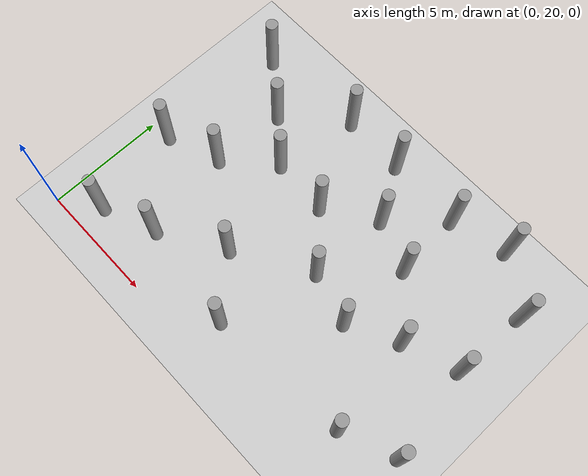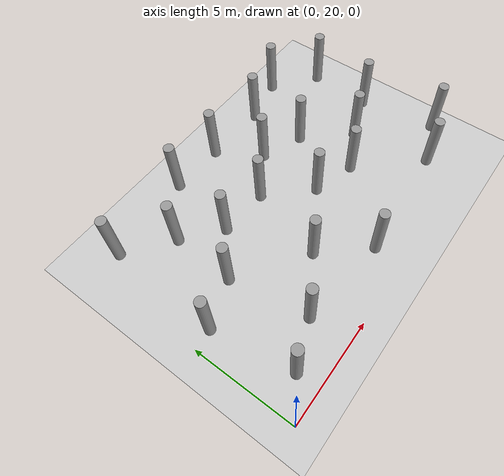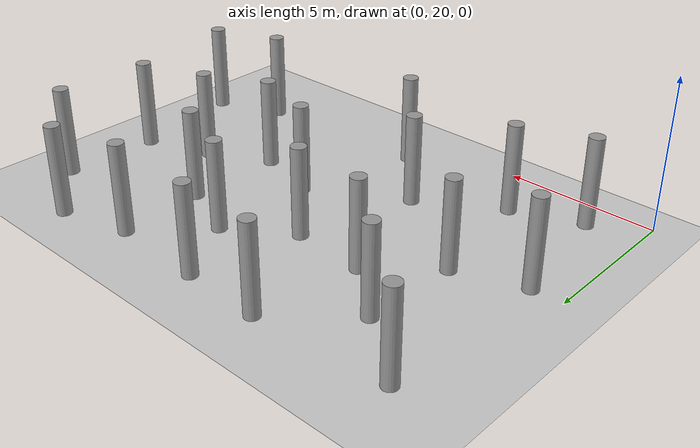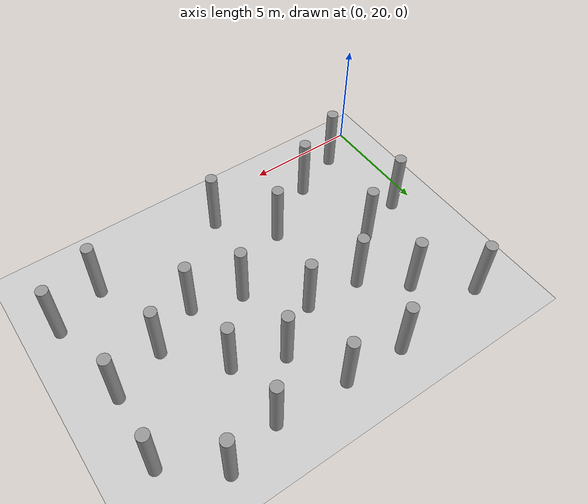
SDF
<sdf version="1.6">
 <world name="default">
  <model name="ground_plane">
   <static>1</static>
   <link name="link">
    <collision name="collision">
     <geometry><plane><normal>0 0 1</normal><size>100 100</size></plane></geometry>
     <surface><friction><ode><mu>100</mu><mu2>50</mu2></ode></friction></surface>
    </collision>
    <visual name="visual">
     <cast_shadows>0</cast_shadows>
     <geometry><plane><normal>0 0 1</normal><size>100 100</size></plane></geometry>
     <material>
      <script><uri>file://media/materials/scripts/gazebo.material</uri><name>Gazebo/Grey</name></script>
     </material>
    </visual>
   </link>
  </model>
  <model name="LjjForest_1">
   <link name="link_0">
    <inertial>
     <mass>1</mass>
     <inertia><ixx>0.145833</ixx><ixy>0</ixy><ixz>0</ixz><iyy>0.145833</iyy><iyz>0</iyz><izz>0.125</izz></inertia>
    </inertial>
    <pose>-5.02717 0.116957 0 0 -0 0</pose>
    <visual name="visual">
     <geometry><cylinder><radius>0.25</radius><length>3</length></cylinder></geometry>
     <material>
      <lighting>1</lighting>
      <script><uri>file://media/materials/scripts/gazebo.material</uri><name>Gazebo/Grey</name></script>
      <shader type="vertex"><normal_map>__default__</normal_map></shader>
      <ambient>0.3 0.3 0.3 1</ambient>
      <diffuse>0.7 0.7 0.7 1</diffuse>
      <specular>0.01 0.01 0.01 1</specular>
      <emissive>0 0 0 1</emissive>
     </material>
    </visual>
    <collision name="collision">
     <geometry><cylinder><radius>0.25</radius><length>3</length></cylinder></geometry>
     <surface>
      <friction>
       <ode><mu>1</mu><mu2>1</mu2><fdir1>0 0 0</fdir1><slip1>0</slip1><slip2>0</slip2></ode>
       <torsional>
        <coefficient>1</coefficient>
        <patch_radius>0</patch_radius>
        <surface_radius>0</surface_radius>
        <use_patch_radius>1</use_patch_radius>
        <ode><slip>0</slip></ode>
       </torsional>
      </friction>
      <bounce><restitution_coefficient>0</restitution_coefficient><threshold>1e+06</threshold></bounce>
      <contact>
       <collide_without_contact>0</collide_without_contact>
       <collide_without_contact_bitmask>1</collide_without_contact_bitmask>
       <collide_bitmask>1</collide_bitmask>
       <ode>
        <soft_cfm>0</soft_cfm>
        <soft_erp>0.2</soft_erp>
        <kp>1e+13</kp>
        <kd>1</kd>
        <max_vel>0.01</max_vel>
        <min_depth>0</min_depth>
       </ode>
       <bullet>
        <split_impulse>1</split_impulse>
        <split_impulse_penetration_threshold>-0.01</split_impulse_penetration_threshold>
        <soft_cfm>0</soft_cfm>
        <soft_erp>0.2</soft_erp>
        <kp>1e+13</kp>
        <kd>1</kd>
       </bullet>
      </contact>
     </surface>
    </collision>
   </link>
   <link name="link_0_clone">
    <inertial>
     <mass>1</mass>
     <inertia><ixx>0.145833</ixx><ixy>0</ixy><ixz>0</ixz><iyy>0.145833</iyy><iyz>0</iyz><izz>0.125</izz></inertia>
    </inertial>
    <pose>-2.83119 0.981911 0 0 -0 0</pose>
    <visual name="visual">
     <geometry><cylinder><radius>0.25</radius><length>3</length></cylinder></geometry>
     <material>
      <lighting>1</lighting>
      <script><uri>file://media/materials/scripts/gazebo.material</uri><name>Gazebo/Grey</name></script>
      <shader type="vertex"><normal_map>__default__</normal_map></shader>
      <ambient>0.3 0.3 0.3 1</ambient>
      <diffuse>0.7 0.7 0.7 1</diffuse>
      <specular>0.01 0.01 0.01 1</specular>
      <emissive>0 0 0 1</emissive>
     </material>
    </visual>
    <collision name="collision">
     <geometry><cylinder><radius>0.25</radius><length>3</length></cylinder></geometry>
     <surface>
      <friction>
       <ode><mu>1</mu><mu2>1</mu2><fdir1>0 0 0</fdir1><slip1>0</slip1><slip2>0</slip2></ode>
       <torsional>
        <coefficient>1</coefficient>
        <patch_radius>0</patch_radius>
        <surface_radius>0</surface_radius>
        <use_patch_radius>1</use_patch_radius>
        <ode><slip>0</slip></ode>
       </torsional>
      </friction>
      <bounce><restitution_coefficient>0</restitution_coefficient><threshold>1e+06</threshold></bounce>
      <contact>
       <collide_without_contact>0</collide_without_contact>
       <collide_without_contact_bitmask>1</collide_without_contact_bitmask>
       <collide_bitmask>1</collide_bitmask>
       <ode>
        <soft_cfm>0</soft_cfm>
        <soft_erp>0.2</soft_erp>
        <kp>1e+13</kp>
        <kd>1</kd>
        <max_vel>0.01</max_vel>
        <min_depth>0</min_depth>
       </ode>
       <bullet>
        <split_impulse>1</split_impulse>
        <split_impulse_penetration_threshold>-0.01</split_impulse_penetration_threshold>
        <soft_cfm>0</soft_cfm>
        <soft_erp>0.2</soft_erp>
        <kp>1e+13</kp>
        <kd>1</kd>
       </bullet>
      </contact>
     </surface>
    </collision>
   </link>
   <link name="link_0_clone_0">
    <inertial>
     <mass>1</mass>
     <inertia><ixx>0.145833</ixx><ixy>0</ixy><ixz>0</ixz><iyy>0.145833</iyy><iyz>0</iyz><izz>0.125</izz></inertia>
    </inertial>
    <pose>-0.25253 2.5682 0 0 -0 0</pose>
    <visual name="visual">
     <geometry><cylinder><radius>0.25</radius><length>3</length></cylinder></geometry>
     <material>
      <lighting>1</lighting>
      <script><uri>file://media/materials/scripts/gazebo.material</uri><name>Gazebo/Grey</name></script>
      <shader type="vertex"><normal_map>__default__</normal_map></shader>
      <ambient>0.3 0.3 0.3 1</ambient>
      <diffuse>0.7 0.7 0.7 1</diffuse>
      <specular>0.01 0.01 0.01 1</specular>
      <emissive>0 0 0 1</emissive>
     </material>
    </visual>
    <collision name="collision">
     <geometry><cylinder><radius>0.25</radius><length>3</length></cylinder></geometry>
     <surface>
      <friction>
       <ode><mu>1</mu><mu2>1</mu2><fdir1>0 0 0</fdir1><slip1>0</slip1><slip2>0</slip2></ode>
       <torsional>
        <coefficient>1</coefficient>
        <patch_radius>0</patch_radius>
        <surface_radius>0</surface_radius>
        <use_patch_radius>1</use_patch_radius>
        <ode><slip>0</slip></ode>
       </torsional>
      </friction>
      <bounce><restitution_coefficient>0</restitution_coefficient><threshold>1e+06</threshold></bounce>
      <contact>
       <collide_without_contact>0</collide_without_contact>
       <collide_without_contact_bitmask>1</collide_without_contact_bitmask>
       <collide_bitmask>1</collide_bitmask>
       <ode>
        <soft_cfm>0</soft_cfm>
        <soft_erp>0.2</soft_erp>
        <kp>1e+13</kp>
        <kd>1</kd>
        <max_vel>0.01</max_vel>
        <min_depth>0</min_depth>
       </ode>
       <bullet>
        <split_impulse>1</split_impulse>
        <split_impulse_penetration_threshold>-0.01</split_impulse_penetration_threshold>
        <soft_cfm>0</soft_cfm>
        <soft_erp>0.2</soft_erp>
        <kp>1e+13</kp>
        <kd>1</kd>
       </bullet>
      </contact>
     </surface>
    </collision>
   </link>
   <link name="link_0_clone_2">
    <inertial>
     <mass>1</mass>
     <inertia><ixx>0.145833</ixx><ixy>0</ixy><ixz>0</ixz><iyy>0.145833</iyy><iyz>0</iyz><izz>0.125</izz></inertia>
    </inertial>
    <pose>1.64727 0.418921 0 0 -0 0</pose>
    <visual name="visual">
     <geometry><cylinder><radius>0.25</radius><length>3</length></cylinder></geometry>
     <material>
      <lighting>1</lighting>
      <script><uri>file://media/materials/scripts/gazebo.material</uri><name>Gazebo/Grey</name></script>
      <shader type="vertex"><normal_map>__default__</normal_map></shader>
      <ambient>0.3 0.3 0.3 1</ambient>
      <diffuse>0.7 0.7 0.7 1</diffuse>
      <specular>0.01 0.01 0.01 1</specular>
      <emissive>0 0 0 1</emissive>
     </material>
    </visual>
    <collision name="collision">
     <geometry><cylinder><radius>0.25</radius><length>3</length></cylinder></geometry>
     <surface>
      <friction>
       <ode><mu>1</mu><mu2>1</mu2><fdir1>0 0 0</fdir1><slip1>0</slip1><slip2>0</slip2></ode>
       <torsional>
        <coefficient>1</coefficient>
        <patch_radius>0</patch_radius>
        <surface_radius>0</surface_radius>
        <use_patch_radius>1</use_patch_radius>
        <ode><slip>0</slip></ode>
       </torsional>
      </friction>
      <bounce><restitution_coefficient>0</restitution_coefficient><threshold>1e+06</threshold></bounce>
      <contact>
       <collide_without_contact>0</collide_without_contact>
       <collide_without_contact_bitmask>1</collide_without_contact_bitmask>
       <collide_bitmask>1</collide_bitmask>
       <ode>
        <soft_cfm>0</soft_cfm>
        <soft_erp>0.2</soft_erp>
        <kp>1e+13</kp>
        <kd>1</kd>
        <max_vel>0.01</max_vel>
        <min_depth>0</min_depth>
       </ode>
       <bullet>
        <split_impulse>1</split_impulse>
        <split_impulse_penetration_threshold>-0.01</split_impulse_penetration_threshold>
        <soft_cfm>0</soft_cfm>
        <soft_erp>0.2</soft_erp>
        <kp>1e+13</kp>
        <kd>1</kd>
       </bullet>
      </contact>
     </surface>
    </collision>
   </link>
   <link name="link_0_clone_23">
    <inertial>
     <mass>1</mass>
     <inertia><ixx>0.145833</ixx><ixy>0</ixy><ixz>0</ixz><iyy>0.145833</iyy><iyz>0</iyz><izz>0.125</izz></inertia>
    </inertial>
    <pose>-5.66615 4.05911 0 0 -0 0</pose>
    <visual name="visual">
     <geometry><cylinder><radius>0.25</radius><length>3</length></cylinder></geometry>
     <material>
      <lighting>1</lighting>
      <script><uri>file://media/materials/scripts/gazebo.material</uri><name>Gazebo/Grey</name></script>
      <shader type="vertex"><normal_map>__default__</normal_map></shader>
      <ambient>0.3 0.3 0.3 1</ambient>
      <diffuse>0.7 0.7 0.7 1</diffuse>
      <specular>0.01 0.01 0.01 1</specular>
      <emissive>0 0 0 1</emissive>
     </material>
    </visual>
    <collision name="collision">
     <geometry><cylinder><radius>0.25</radius><length>3</length></cylinder></geometry>
     <surface>
      <friction>
       <ode><mu>1</mu><mu2>1</mu2><fdir1>0 0 0</fdir1><slip1>0</slip1><slip2>0</slip2></ode>
       <torsional>
        <coefficient>1</coefficient>
        <patch_radius>0</patch_radius>
        <surface_radius>0</surface_radius>
        <use_patch_radius>1</use_patch_radius>
        <ode><slip>0</slip></ode>
       </torsional>
      </friction>
      <bounce><restitution_coefficient>0</restitution_coefficient><threshold>1e+06</threshold></bounce>
      <contact>
       <collide_without_contact>0</collide_without_contact>
       <collide_without_contact_bitmask>1</collide_without_contact_bitmask>
       <collide_bitmask>1</collide_bitmask>
       <ode>
        <soft_cfm>0</soft_cfm>
        <soft_erp>0.2</soft_erp>
        <kp>1e+13</kp>
        <kd>1</kd>
        <max_vel>0.01</max_vel>
        <min_depth>0</min_depth>
       </ode>
       <bullet>
        <split_impulse>1</split_impulse>
        <split_impulse_penetration_threshold>-0.01</split_impulse_penetration_threshold>
        <soft_cfm>0</soft_cfm>
        <soft_erp>0.2</soft_erp>
        <kp>1e+13</kp>
        <kd>1</kd>
       </bullet>
      </contact>
     </surface>
    </collision>
   </link>
   <link name="link_0_clone_24">
    <inertial>
     <mass>1</mass>
     <inertia><ixx>0.145833</ixx><ixy>0</ixy><ixz>0</ixz><iyy>0.145833</iyy><iyz>0</iyz><izz>0.125</izz></inertia>
    </inertial>
    <pose>2.92874 7.75131 0 0 -0 0</pose>
    <visual name="visual">
     <geometry><cylinder><radius>0.25</radius><length>3</length></cylinder></geometry>
     <material>
      <lighting>1</lighting>
      <script><uri>file://media/materials/scripts/gazebo.material</uri><name>Gazebo/Grey</name></script>
      <shader type="vertex"><normal_map>__default__</normal_map></shader>
      <ambient>0.3 0.3 0.3 1</ambient>
      <diffuse>0.7 0.7 0.7 1</diffuse>
      <specular>0.01 0.01 0.01 1</specular>
      <emissive>0 0 0 1</emissive>
     </material>
    </visual>
    <collision name="collision">
     <geometry><cylinder><radius>0.25</radius><length>3</length></cylinder></geometry>
     <surface>
      <friction>
       <ode><mu>1</mu><mu2>1</mu2><fdir1>0 0 0</fdir1><slip1>0</slip1><slip2>0</slip2></ode>
       <torsional>
        <coefficient>1</coefficient>
        <patch_radius>0</patch_radius>
        <surface_radius>0</surface_radius>
        <use_patch_radius>1</use_patch_radius>
        <ode><slip>0</slip></ode>
       </torsional>
      </friction>
      <bounce><restitution_coefficient>0</restitution_coefficient><threshold>1e+06</threshold></bounce>
      <contact>
       <collide_without_contact>0</collide_without_contact>
       <collide_without_contact_bitmask>1</collide_without_contact_bitmask>
       <collide_bitmask>1</collide_bitmask>
       <ode>
        <soft_cfm>0</soft_cfm>
        <soft_erp>0.2</soft_erp>
        <kp>1e+13</kp>
        <kd>1</kd>
        <max_vel>0.01</max_vel>
        <min_depth>0</min_depth>
       </ode>
       <bullet>
        <split_impulse>1</split_impulse>
        <split_impulse_penetration_threshold>-0.01</split_impulse_penetration_threshold>
        <soft_cfm>0</soft_cfm>
        <soft_erp>0.2</soft_erp>
        <kp>1e+13</kp>
        <kd>1</kd>
       </bullet>
      </contact>
     </surface>
    </collision>
   </link>
   <link name="link_0_clone_25">
    <inertial>
     <mass>1</mass>
     <inertia><ixx>0.145833</ixx><ixy>0</ixy><ixz>0</ixz><iyy>0.145833</iyy><iyz>0</iyz><izz>0.125</izz></inertia>
    </inertial>
    <pose>4.82479 9.76951 0 0 -0 0</pose>
    <visual name="visual">
     <geometry><cylinder><radius>0.25</radius><length>3</length></cylinder></geometry>
     <material>
      <lighting>1</lighting>
      <script><uri>file://media/materials/scripts/gazebo.material</uri><name>Gazebo/Grey</name></script>
      <shader type="vertex"><normal_map>__default__</normal_map></shader>
      <ambient>0.3 0.3 0.3 1</ambient>
      <diffuse>0.7 0.7 0.7 1</diffuse>
      <specular>0.01 0.01 0.01 1</specular>
      <emissive>0 0 0 1</emissive>
     </material>
    </visual>
    <collision name="collision">
     <geometry><cylinder><radius>0.25</radius><length>3</length></cylinder></geometry>
     <surface>
      <friction>
       <ode><mu>1</mu><mu2>1</mu2><fdir1>0 0 0</fdir1><slip1>0</slip1><slip2>0</slip2></ode>
       <torsional>
        <coefficient>1</coefficient>
        <patch_radius>0</patch_radius>
        <surface_radius>0</surface_radius>
        <use_patch_radius>1</use_patch_radius>
        <ode><slip>0</slip></ode>
       </torsional>
      </friction>
      <bounce><restitution_coefficient>0</restitution_coefficient><threshold>1e+06</threshold></bounce>
      <contact>
       <collide_without_contact>0</collide_without_contact>
       <collide_without_contact_bitmask>1</collide_without_contact_bitmask>
       <collide_bitmask>1</collide_bitmask>
       <ode>
        <soft_cfm>0</soft_cfm>
        <soft_erp>0.2</soft_erp>
        <kp>1e+13</kp>
        <kd>1</kd>
        <max_vel>0.01</max_vel>
        <min_depth>0</min_depth>
       </ode>
       <bullet>
        <split_impulse>1</split_impulse>
        <split_impulse_penetration_threshold>-0.01</split_impulse_penetration_threshold>
        <soft_cfm>0</soft_cfm>
        <soft_erp>0.2</soft_erp>
        <kp>1e+13</kp>
        <kd>1</kd>
       </bullet>
      </contact>
     </surface>
    </collision>
   </link>
   <link name="link_0_clone_26">
    <inertial>
     <mass>1</mass>
     <inertia><ixx>0.145833</ixx><ixy>0</ixy><ixz>0</ixz><iyy>0.145833</iyy><iyz>0</iyz><izz>0.125</izz></inertia>
    </inertial>
    <pose>1.66794 9.91533 0 0 -0 0</pose>
    <visual name="visual">
     <geometry><cylinder><radius>0.25</radius><length>3</length></cylinder></geometry>
     <material>
      <lighting>1</lighting>
      <script><uri>file://media/materials/scripts/gazebo.material</uri><name>Gazebo/Grey</name></script>
      <shader type="vertex"><normal_map>__default__</normal_map></shader>
      <ambient>0.3 0.3 0.3 1</ambient>
      <diffuse>0.7 0.7 0.7 1</diffuse>
      <specular>0.01 0.01 0.01 1</specular>
      <emissive>0 0 0 1</emissive>
     </material>
    </visual>
    <collision name="collision">
     <geometry><cylinder><radius>0.25</radius><length>3</length></cylinder></geometry>
     <surface>
      <friction>
       <ode><mu>1</mu><mu2>1</mu2><fdir1>0 0 0</fdir1><slip1>0</slip1><slip2>0</slip2></ode>
       <torsional>
        <coefficient>1</coefficient>
        <patch_radius>0</patch_radius>
        <surface_radius>0</surface_radius>
        <use_patch_radius>1</use_patch_radius>
        <ode><slip>0</slip></ode>
       </torsional>
      </friction>
      <bounce><restitution_coefficient>0</restitution_coefficient><threshold>1e+06</threshold></bounce>
      <contact>
       <collide_without_contact>0</collide_without_contact>
       <collide_without_contact_bitmask>1</collide_without_contact_bitmask>
       <collide_bitmask>1</collide_bitmask>
       <ode>
        <soft_cfm>0</soft_cfm>
        <soft_erp>0.2</soft_erp>
        <kp>1e+13</kp>
        <kd>1</kd>
        <max_vel>0.01</max_vel>
        <min_depth>0</min_depth>
       </ode>
       <bullet>
        <split_impulse>1</split_impulse>
        <split_impulse_penetration_threshold>-0.01</split_impulse_penetration_threshold>
        <soft_cfm>0</soft_cfm>
        <soft_erp>0.2</soft_erp>
        <kp>1e+13</kp>
        <kd>1</kd>
       </bullet>
      </contact>
     </surface>
    </collision>
   </link>
   <link name="link_0_clone_27">
    <inertial>
     <mass>1</mass>
     <inertia><ixx>0.145833</ixx><ixy>0</ixy><ixz>0</ixz><iyy>0.145833</iyy><iyz>0</iyz><izz>0.125</izz></inertia>
    </inertial>
    <pose>-0.975859 10.0087 0 0 -0 0</pose>
    <visual name="visual">
     <geometry><cylinder><radius>0.25</radius><length>3</length></cylinder></geometry>
     <material>
      <lighting>1</lighting>
      <script><uri>file://media/materials/scripts/gazebo.material</uri><name>Gazebo/Grey</name></script>
      <shader type="vertex"><normal_map>__default__</normal_map></shader>
      <ambient>0.3 0.3 0.3 1</ambient>
      <diffuse>0.7 0.7 0.7 1</diffuse>
      <specular>0.01 0.01 0.01 1</specular>
      <emissive>0 0 0 1</emissive>
     </material>
    </visual>
    <collision name="collision">
     <geometry><cylinder><radius>0.25</radius><length>3</length></cylinder></geometry>
     <surface>
      <friction>
       <ode><mu>1</mu><mu2>1</mu2><fdir1>0 0 0</fdir1><slip1>0</slip1><slip2>0</slip2></ode>
       <torsional>
        <coefficient>1</coefficient>
        <patch_radius>0</patch_radius>
        <surface_radius>0</surface_radius>
        <use_patch_radius>1</use_patch_radius>
        <ode><slip>0</slip></ode>
       </torsional>
      </friction>
      <bounce><restitution_coefficient>0</restitution_coefficient><threshold>1e+06</threshold></bounce>
      <contact>
       <collide_without_contact>0</collide_without_contact>
       <collide_without_contact_bitmask>1</collide_without_contact_bitmask>
       <collide_bitmask>1</collide_bitmask>
       <ode>
        <soft_cfm>0</soft_cfm>
        <soft_erp>0.2</soft_erp>
        <kp>1e+13</kp>
        <kd>1</kd>
        <max_vel>0.01</max_vel>
        <min_depth>0</min_depth>
       </ode>
       <bullet>
        <split_impulse>1</split_impulse>
        <split_impulse_penetration_threshold>-0.01</split_impulse_penetration_threshold>
        <soft_cfm>0</soft_cfm>
        <soft_erp>0.2</soft_erp>
        <kp>1e+13</kp>
        <kd>1</kd>
       </bullet>
      </contact>
     </surface>
    </collision>
   </link>
   <link name="link_0_clone_28">
    <inertial>
     <mass>1</mass>
     <inertia><ixx>0.145833</ixx><ixy>0</ixy><ixz>0</ixz><iyy>0.145833</iyy><iyz>0</iyz><izz>0.125</izz></inertia>
    </inertial>
    <pose>-3.28832 7.97521 0 0 -0 0</pose>
    <visual name="visual">
     <geometry><cylinder><radius>0.25</radius><length>3</length></cylinder></geometry>
     <material>
      <lighting>1</lighting>
      <script><uri>file://media/materials/scripts/gazebo.material</uri><name>Gazebo/Grey</name></script>
      <shader type="vertex"><normal_map>__default__</normal_map></shader>
      <ambient>0.3 0.3 0.3 1</ambient>
      <diffuse>0.7 0.7 0.7 1</diffuse>
      <specular>0.01 0.01 0.01 1</specular>
      <emissive>0 0 0 1</emissive>
     </material>
    </visual>
    <collision name="collision">
     <geometry><cylinder><radius>0.25</radius><length>3</length></cylinder></geometry>
     <surface>
      <friction>
       <ode><mu>1</mu><mu2>1</mu2><fdir1>0 0 0</fdir1><slip1>0</slip1><slip2>0</slip2></ode>
       <torsional>
        <coefficient>1</coefficient>
        <patch_radius>0</patch_radius>
        <surface_radius>0</surface_radius>
        <use_patch_radius>1</use_patch_radius>
        <ode><slip>0</slip></ode>
       </torsional>
      </friction>
      <bounce><restitution_coefficient>0</restitution_coefficient><threshold>1e+06</threshold></bounce>
      <contact>
       <collide_without_contact>0</collide_without_contact>
       <collide_without_contact_bitmask>1</collide_without_contact_bitmask>
       <collide_bitmask>1</collide_bitmask>
       <ode>
        <soft_cfm>0</soft_cfm>
        <soft_erp>0.2</soft_erp>
        <kp>1e+13</kp>
        <kd>1</kd>
        <max_vel>0.01</max_vel>
        <min_depth>0</min_depth>
       </ode>
       <bullet>
        <split_impulse>1</split_impulse>
        <split_impulse_penetration_threshold>-0.01</split_impulse_penetration_threshold>
        <soft_cfm>0</soft_cfm>
        <soft_erp>0.2</soft_erp>
        <kp>1e+13</kp>
        <kd>1</kd>
       </bullet>
      </contact>
     </surface>
    </collision>
   </link>
   <link name="link_0_clone_29">
    <inertial>
     <mass>1</mass>
     <inertia><ixx>0.145833</ixx><ixy>0</ixy><ixz>0</ixz><iyy>0.145833</iyy><iyz>0</iyz><izz>0.125</izz></inertia>
    </inertial>
    <pose>-5.38645 9.63545 0 0 -0 0</pose>
    <visual name="visual">
     <geometry><cylinder><radius>0.25</radius><length>3</length></cylinder></geometry>
     <material>
      <lighting>1</lighting>
      <script><uri>file://media/materials/scripts/gazebo.material</uri><name>Gazebo/Grey</name></script>
      <shader type="vertex"><normal_map>__default__</normal_map></shader>
      <ambient>0.3 0.3 0.3 1</ambient>
      <diffuse>0.7 0.7 0.7 1</diffuse>
      <specular>0.01 0.01 0.01 1</specular>
      <emissive>0 0 0 1</emissive>
     </material>
    </visual>
    <collision name="collision">
     <geometry><cylinder><radius>0.25</radius><length>3</length></cylinder></geometry>
     <surface>
      <friction>
       <ode><mu>1</mu><mu2>1</mu2><fdir1>0 0 0</fdir1><slip1>0</slip1><slip2>0</slip2></ode>
       <torsional>
        <coefficient>1</coefficient>
        <patch_radius>0</patch_radius>
        <surface_radius>0</surface_radius>
        <use_patch_radius>1</use_patch_radius>
        <ode><slip>0</slip></ode>
       </torsional>
      </friction>
      <bounce><restitution_coefficient>0</restitution_coefficient><threshold>1e+06</threshold></bounce>
      <contact>
       <collide_without_contact>0</collide_without_contact>
       <collide_without_contact_bitmask>1</collide_without_contact_bitmask>
       <collide_bitmask>1</collide_bitmask>
       <ode>
        <soft_cfm>0</soft_cfm>
        <soft_erp>0.2</soft_erp>
        <kp>1e+13</kp>
        <kd>1</kd>
        <max_vel>0.01</max_vel>
        <min_depth>0</min_depth>
       </ode>
       <bullet>
        <split_impulse>1</split_impulse>
        <split_impulse_penetration_threshold>-0.01</split_impulse_penetration_threshold>
        <soft_cfm>0</soft_cfm>
        <soft_erp>0.2</soft_erp>
        <kp>1e+13</kp>
        <kd>1</kd>
       </bullet>
      </contact>
     </surface>
    </collision>
   </link>
   <link name="link_0_clone_3">
    <inertial>
     <mass>1</mass>
     <inertia><ixx>0.145833</ixx><ixy>0</ixy><ixz>0</ixz><iyy>0.145833</iyy><iyz>0</iyz><izz>0.125</izz></inertia>
    </inertial>
    <pose>2.76214 4.38882 0 0 -0 0</pose>
    <visual name="visual">
     <geometry><cylinder><radius>0.25</radius><length>3</length></cylinder></geometry>
     <material>
      <lighting>1</lighting>
      <script><uri>file://media/materials/scripts/gazebo.material</uri><name>Gazebo/Grey</name></script>
      <shader type="vertex"><normal_map>__default__</normal_map></shader>
      <ambient>0.3 0.3 0.3 1</ambient>
      <diffuse>0.7 0.7 0.7 1</diffuse>
      <specular>0.01 0.01 0.01 1</specular>
      <emissive>0 0 0 1</emissive>
     </material>
    </visual>
    <collision name="collision">
     <geometry><cylinder><radius>0.25</radius><length>3</length></cylinder></geometry>
     <surface>
      <friction>
       <ode><mu>1</mu><mu2>1</mu2><fdir1>0 0 0</fdir1><slip1>0</slip1><slip2>0</slip2></ode>
       <torsional>
        <coefficient>1</coefficient>
        <patch_radius>0</patch_radius>
        <surface_radius>0</surface_radius>
        <use_patch_radius>1</use_patch_radius>
        <ode><slip>0</slip></ode>
       </torsional>
      </friction>
      <bounce><restitution_coefficient>0</restitution_coefficient><threshold>1e+06</threshold></bounce>
      <contact>
       <collide_without_contact>0</collide_without_contact>
       <collide_without_contact_bitmask>1</collide_without_contact_bitmask>
       <collide_bitmask>1</collide_bitmask>
       <ode>
        <soft_cfm>0</soft_cfm>
        <soft_erp>0.2</soft_erp>
        <kp>1e+13</kp>
        <kd>1</kd>
        <max_vel>0.01</max_vel>
        <min_depth>0</min_depth>
       </ode>
       <bullet>
        <split_impulse>1</split_impulse>
        <split_impulse_penetration_threshold>-0.01</split_impulse_penetration_threshold>
        <soft_cfm>0</soft_cfm>
        <soft_erp>0.2</soft_erp>
        <kp>1e+13</kp>
        <kd>1</kd>
       </bullet>
      </contact>
     </surface>
    </collision>
   </link>
   <link name="link_0_clone_30">
    <inertial>
     <mass>1</mass>
     <inertia><ixx>0.145833</ixx><ixy>0</ixy><ixz>0</ixz><iyy>0.145833</iyy><iyz>0</iyz><izz>0.125</izz></inertia>
    </inertial>
    <pose>4.96935 6.93626 0 0 -0 0</pose>
    <visual name="visual">
     <geometry><cylinder><radius>0.25</radius><length>3</length></cylinder></geometry>
     <material>
      <lighting>1</lighting>
      <script><uri>file://media/materials/scripts/gazebo.material</uri><name>Gazebo/Grey</name></script>
      <shader type="vertex"><normal_map>__default__</normal_map></shader>
      <ambient>0.3 0.3 0.3 1</ambient>
      <diffuse>0.7 0.7 0.7 1</diffuse>
      <specular>0.01 0.01 0.01 1</specular>
      <emissive>0 0 0 1</emissive>
     </material>
    </visual>
    <collision name="collision">
     <geometry><cylinder><radius>0.25</radius><length>3</length></cylinder></geometry>
     <surface>
      <friction>
       <ode><mu>1</mu><mu2>1</mu2><fdir1>0 0 0</fdir1><slip1>0</slip1><slip2>0</slip2></ode>
       <torsional>
        <coefficient>1</coefficient>
        <patch_radius>0</patch_radius>
        <surface_radius>0</surface_radius>
        <use_patch_radius>1</use_patch_radius>
        <ode><slip>0</slip></ode>
       </torsional>
      </friction>
      <bounce><restitution_coefficient>0</restitution_coefficient><threshold>1e+06</threshold></bounce>
      <contact>
       <collide_without_contact>0</collide_without_contact>
       <collide_without_contact_bitmask>1</collide_without_contact_bitmask>
       <collide_bitmask>1</collide_bitmask>
       <ode>
        <soft_cfm>0</soft_cfm>
        <soft_erp>0.2</soft_erp>
        <kp>1e+13</kp>
        <kd>1</kd>
        <max_vel>0.01</max_vel>
        <min_depth>0</min_depth>
       </ode>
       <bullet>
        <split_impulse>1</split_impulse>
        <split_impulse_penetration_threshold>-0.01</split_impulse_penetration_threshold>
        <soft_cfm>0</soft_cfm>
        <soft_erp>0.2</soft_erp>
        <kp>1e+13</kp>
        <kd>1</kd>
       </bullet>
      </contact>
     </surface>
    </collision>
   </link>
   <link name="link_0_clone_31">
    <inertial>
     <mass>1</mass>
     <inertia><ixx>0.145833</ixx><ixy>0</ixy><ixz>0</ixz><iyy>0.145833</iyy><iyz>0</iyz><izz>0.125</izz></inertia>
    </inertial>
    <pose>4.87388 3.77106 0 0 -0 0</pose>
    <visual name="visual">
     <geometry><cylinder><radius>0.25</radius><length>3</length></cylinder></geometry>
     <material>
      <lighting>1</lighting>
      <script><uri>file://media/materials/scripts/gazebo.material</uri><name>Gazebo/Grey</name></script>
      <shader type="vertex"><normal_map>__default__</normal_map></shader>
      <ambient>0.3 0.3 0.3 1</ambient>
      <diffuse>0.7 0.7 0.7 1</diffuse>
      <specular>0.01 0.01 0.01 1</specular>
      <emissive>0 0 0 1</emissive>
     </material>
    </visual>
    <collision name="collision">
     <geometry><cylinder><radius>0.25</radius><length>3</length></cylinder></geometry>
     <surface>
      <friction>
       <ode><mu>1</mu><mu2>1</mu2><fdir1>0 0 0</fdir1><slip1>0</slip1><slip2>0</slip2></ode>
       <torsional>
        <coefficient>1</coefficient>
        <patch_radius>0</patch_radius>
        <surface_radius>0</surface_radius>
        <use_patch_radius>1</use_patch_radius>
        <ode><slip>0</slip></ode>
       </torsional>
      </friction>
      <bounce><restitution_coefficient>0</restitution_coefficient><threshold>1e+06</threshold></bounce>
      <contact>
       <collide_without_contact>0</collide_without_contact>
       <collide_without_contact_bitmask>1</collide_without_contact_bitmask>
       <collide_bitmask>1</collide_bitmask>
       <ode>
        <soft_cfm>0</soft_cfm>
        <soft_erp>0.2</soft_erp>
        <kp>1e+13</kp>
        <kd>1</kd>
        <max_vel>0.01</max_vel>
        <min_depth>0</min_depth>
       </ode>
       <bullet>
        <split_impulse>1</split_impulse>
        <split_impulse_penetration_threshold>-0.01</split_impulse_penetration_threshold>
        <soft_cfm>0</soft_cfm>
        <soft_erp>0.2</soft_erp>
        <kp>1e+13</kp>
        <kd>1</kd>
       </bullet>
      </contact>
     </surface>
    </collision>
   </link>
   <link name="link_0_clone_4">
    <inertial>
     <mass>1</mass>
     <inertia><ixx>0.145833</ixx><ixy>0</ixy><ixz>0</ixz><iyy>0.145833</iyy><iyz>0</iyz><izz>0.125</izz></inertia>
    </inertial>
    <pose>0.858928 6.3824 0 0 -0 0</pose>
    <visual name="visual">
     <geometry><cylinder><radius>0.25</radius><length>3</length></cylinder></geometry>
     <material>
      <lighting>1</lighting>
      <script><uri>file://media/materials/scripts/gazebo.material</uri><name>Gazebo/Grey</name></script>
      <shader type="vertex"><normal_map>__default__</normal_map></shader>
      <ambient>0.3 0.3 0.3 1</ambient>
      <diffuse>0.7 0.7 0.7 1</diffuse>
      <specular>0.01 0.01 0.01 1</specular>
      <emissive>0 0 0 1</emissive>
     </material>
    </visual>
    <collision name="collision">
     <geometry><cylinder><radius>0.25</radius><length>3</length></cylinder></geometry>
     <surface>
      <friction>
       <ode><mu>1</mu><mu2>1</mu2><fdir1>0 0 0</fdir1><slip1>0</slip1><slip2>0</slip2></ode>
       <torsional>
        <coefficient>1</coefficient>
        <patch_radius>0</patch_radius>
        <surface_radius>0</surface_radius>
        <use_patch_radius>1</use_patch_radius>
        <ode><slip>0</slip></ode>
       </torsional>
      </friction>
      <bounce><restitution_coefficient>0</restitution_coefficient><threshold>1e+06</threshold></bounce>
      <contact>
       <collide_without_contact>0</collide_without_contact>
       <collide_without_contact_bitmask>1</collide_without_contact_bitmask>
       <collide_bitmask>1</collide_bitmask>
       <ode>
        <soft_cfm>0</soft_cfm>
        <soft_erp>0.2</soft_erp>
        <kp>1e+13</kp>
        <kd>1</kd>
        <max_vel>0.01</max_vel>
        <min_depth>0</min_depth>
       </ode>
       <bullet>
        <split_impulse>1</split_impulse>
        <split_impulse_penetration_threshold>-0.01</split_impulse_penetration_threshold>
        <soft_cfm>0</soft_cfm>
        <soft_erp>0.2</soft_erp>
        <kp>1e+13</kp>
        <kd>1</kd>
       </bullet>
      </contact>
     </surface>
    </collision>
   </link>
   <link name="link_0_clone_5">
    <inertial>
     <mass>1</mass>
     <inertia><ixx>0.145833</ixx><ixy>0</ixy><ixz>0</ixz><iyy>0.145833</iyy><iyz>0</iyz><izz>0.125</izz></inertia>
    </inertial>
    <pose>-1.56065 6.53618 0 0 -0 0</pose>
    <visual name="visual">
     <geometry><cylinder><radius>0.25</radius><length>3</length></cylinder></geometry>
     <material>
      <lighting>1</lighting>
      <script><uri>file://media/materials/scripts/gazebo.material</uri><name>Gazebo/Grey</name></script>
      <shader type="vertex"><normal_map>__default__</normal_map></shader>
      <ambient>0.3 0.3 0.3 1</ambient>
      <diffuse>0.7 0.7 0.7 1</diffuse>
      <specular>0.01 0.01 0.01 1</specular>
      <emissive>0 0 0 1</emissive>
     </material>
    </visual>
    <collision name="collision">
     <geometry><cylinder><radius>0.25</radius><length>3</length></cylinder></geometry>
     <surface>
      <friction>
       <ode><mu>1</mu><mu2>1</mu2><fdir1>0 0 0</fdir1><slip1>0</slip1><slip2>0</slip2></ode>
       <torsional>
        <coefficient>1</coefficient>
        <patch_radius>0</patch_radius>
        <surface_radius>0</surface_radius>
        <use_patch_radius>1</use_patch_radius>
        <ode><slip>0</slip></ode>
       </torsional>
      </friction>
      <bounce><restitution_coefficient>0</restitution_coefficient><threshold>1e+06</threshold></bounce>
      <contact>
       <collide_without_contact>0</collide_without_contact>
       <collide_without_contact_bitmask>1</collide_without_contact_bitmask>
       <collide_bitmask>1</collide_bitmask>
       <ode>
        <soft_cfm>0</soft_cfm>
        <soft_erp>0.2</soft_erp>
        <kp>1e+13</kp>
        <kd>1</kd>
        <max_vel>0.01</max_vel>
        <min_depth>0</min_depth>
       </ode>
       <bullet>
        <split_impulse>1</split_impulse>
        <split_impulse_penetration_threshold>-0.01</split_impulse_penetration_threshold>
        <soft_cfm>0</soft_cfm>
        <soft_erp>0.2</soft_erp>
        <kp>1e+13</kp>
        <kd>1</kd>
       </bullet>
      </contact>
     </surface>
    </collision>
   </link>
   <link name="link_0_clone_6">
    <inertial>
     <mass>1</mass>
     <inertia><ixx>0.145833</ixx><ixy>0</ixy><ixz>0</ixz><iyy>0.145833</iyy><iyz>0</iyz><izz>0.125</izz></inertia>
    </inertial>
    <pose>-3.46215 4.85006 0 0 -0 0</pose>
    <visual name="visual">
     <geometry><cylinder><radius>0.25</radius><length>3</length></cylinder></geometry>
     <material>
      <lighting>1</lighting>
      <script><uri>file://media/materials/scripts/gazebo.material</uri><name>Gazebo/Grey</name></script>
      <shader type="vertex"><normal_map>__default__</normal_map></shader>
      <ambient>0.3 0.3 0.3 1</ambient>
      <diffuse>0.7 0.7 0.7 1</diffuse>
      <specular>0.01 0.01 0.01 1</specular>
      <emissive>0 0 0 1</emissive>
     </material>
    </visual>
    <collision name="collision">
     <geometry><cylinder><radius>0.25</radius><length>3</length></cylinder></geometry>
     <surface>
      <friction>
       <ode><mu>1</mu><mu2>1</mu2><fdir1>0 0 0</fdir1><slip1>0</slip1><slip2>0</slip2></ode>
       <torsional>
        <coefficient>1</coefficient>
        <patch_radius>0</patch_radius>
        <surface_radius>0</surface_radius>
        <use_patch_radius>1</use_patch_radius>
        <ode><slip>0</slip></ode>
       </torsional>
      </friction>
      <bounce><restitution_coefficient>0</restitution_coefficient><threshold>1e+06</threshold></bounce>
      <contact>
       <collide_without_contact>0</collide_without_contact>
       <collide_without_contact_bitmask>1</collide_without_contact_bitmask>
       <collide_bitmask>1</collide_bitmask>
       <ode>
        <soft_cfm>0</soft_cfm>
        <soft_erp>0.2</soft_erp>
        <kp>1e+13</kp>
        <kd>1</kd>
        <max_vel>0.01</max_vel>
        <min_depth>0</min_depth>
       </ode>
       <bullet>
        <split_impulse>1</split_impulse>
        <split_impulse_penetration_threshold>-0.01</split_impulse_penetration_threshold>
        <soft_cfm>0</soft_cfm>
        <soft_erp>0.2</soft_erp>
        <kp>1e+13</kp>
        <kd>1</kd>
       </bullet>
      </contact>
     </surface>
    </collision>
   </link>
   <static>0</static>
   <pose>6.6881 21.007 1.49999 0 -0 0.002263</pose>
  </model>
  <model name="LjjForest_2">
   <link name="link_0">
    <inertial>
     <mass>1</mass>
     <inertia><ixx>0.145833</ixx><ixy>0</ixy><ixz>0</ixz><iyy>0.145833</iyy><iyz>0</iyz><izz>0.125</izz></inertia>
    </inertial>
    <pose>-5.02717 0.116957 0 0 -0 0</pose>
    <visual name="visual">
     <geometry><cylinder><radius>0.25</radius><length>3</length></cylinder></geometry>
     <material>
      <lighting>1</lighting>
      <script><uri>file://media/materials/scripts/gazebo.material</uri><name>Gazebo/Grey</name></script>
      <shader type="vertex"><normal_map>__default__</normal_map></shader>
      <ambient>0.3 0.3 0.3 1</ambient>
      <diffuse>0.7 0.7 0.7 1</diffuse>
      <specular>0.01 0.01 0.01 1</specular>
      <emissive>0 0 0 1</emissive>
     </material>
    </visual>
    <collision name="collision">
     <geometry><cylinder><radius>0.25</radius><length>3</length></cylinder></geometry>
     <surface>
      <friction>
       <ode><mu>1</mu><mu2>1</mu2><fdir1>0 0 0</fdir1><slip1>0</slip1><slip2>0</slip2></ode>
       <torsional>
        <coefficient>1</coefficient>
        <patch_radius>0</patch_radius>
        <surface_radius>0</surface_radius>
        <use_patch_radius>1</use_patch_radius>
        <ode><slip>0</slip></ode>
       </torsional>
      </friction>
      <bounce><restitution_coefficient>0</restitution_coefficient><threshold>1e+06</threshold></bounce>
      <contact>
       <collide_without_contact>0</collide_without_contact>
       <collide_without_contact_bitmask>1</collide_without_contact_bitmask>
       <collide_bitmask>1</collide_bitmask>
       <ode>
        <soft_cfm>0</soft_cfm>
        <soft_erp>0.2</soft_erp>
        <kp>1e+13</kp>
        <kd>1</kd>
        <max_vel>0.01</max_vel>
        <min_depth>0</min_depth>
       </ode>
       <bullet>
        <split_impulse>1</split_impulse>
        <split_impulse_penetration_threshold>-0.01</split_impulse_penetration_threshold>
        <soft_cfm>0</soft_cfm>
        <soft_erp>0.2</soft_erp>
        <kp>1e+13</kp>
        <kd>1</kd>
       </bullet>
      </contact>
     </surface>
    </collision>
   </link>
   <link name="link_0_clone">
    <inertial>
     <mass>1</mass>
     <inertia><ixx>0.145833</ixx><ixy>0</ixy><ixz>0</ixz><iyy>0.145833</iyy><iyz>0</iyz><izz>0.125</izz></inertia>
    </inertial>
    <pose>-2.83119 0.981911 0 0 -0 0</pose>
    <visual name="visual">
     <geometry><cylinder><radius>0.25</radius><length>3</length></cylinder></geometry>
     <material>
      <lighting>1</lighting>
      <script><uri>file://media/materials/scripts/gazebo.material</uri><name>Gazebo/Grey</name></script>
      <shader type="vertex"><normal_map>__default__</normal_map></shader>
      <ambient>0.3 0.3 0.3 1</ambient>
      <diffuse>0.7 0.7 0.7 1</diffuse>
      <specular>0.01 0.01 0.01 1</specular>
      <emissive>0 0 0 1</emissive>
     </material>
    </visual>
    <collision name="collision">
     <geometry><cylinder><radius>0.25</radius><length>3</length></cylinder></geometry>
     <surface>
      <friction>
       <ode><mu>1</mu><mu2>1</mu2><fdir1>0 0 0</fdir1><slip1>0</slip1><slip2>0</slip2></ode>
       <torsional>
        <coefficient>1</coefficient>
        <patch_radius>0</patch_radius>
        <surface_radius>0</surface_radius>
        <use_patch_radius>1</use_patch_radius>
        <ode><slip>0</slip></ode>
       </torsional>
      </friction>
      <bounce><restitution_coefficient>0</restitution_coefficient><threshold>1e+06</threshold></bounce>
      <contact>
       <collide_without_contact>0</collide_without_contact>
       <collide_without_contact_bitmask>1</collide_without_contact_bitmask>
       <collide_bitmask>1</collide_bitmask>
       <ode>
        <soft_cfm>0</soft_cfm>
        <soft_erp>0.2</soft_erp>
        <kp>1e+13</kp>
        <kd>1</kd>
        <max_vel>0.01</max_vel>
        <min_depth>0</min_depth>
       </ode>
       <bullet>
        <split_impulse>1</split_impulse>
        <split_impulse_penetration_threshold>-0.01</split_impulse_penetration_threshold>
        <soft_cfm>0</soft_cfm>
        <soft_erp>0.2</soft_erp>
        <kp>1e+13</kp>
        <kd>1</kd>
       </bullet>
      </contact>
     </surface>
    </collision>
   </link>
   <link name="link_0_clone_23">
    <inertial>
     <mass>1</mass>
     <inertia><ixx>0.145833</ixx><ixy>0</ixy><ixz>0</ixz><iyy>0.145833</iyy><iyz>0</iyz><izz>0.125</izz></inertia>
    </inertial>
    <pose>-5.66615 4.05911 0 0 -0 0</pose>
    <visual name="visual">
     <geometry><cylinder><radius>0.25</radius><length>3</length></cylinder></geometry>
     <material>
      <lighting>1</lighting>
      <script><uri>file://media/materials/scripts/gazebo.material</uri><name>Gazebo/Grey</name></script>
      <shader type="vertex"><normal_map>__default__</normal_map></shader>
      <ambient>0.3 0.3 0.3 1</ambient>
      <diffuse>0.7 0.7 0.7 1</diffuse>
      <specular>0.01 0.01 0.01 1</specular>
      <emissive>0 0 0 1</emissive>
     </material>
    </visual>
    <collision name="collision">
     <geometry><cylinder><radius>0.25</radius><length>3</length></cylinder></geometry>
     <surface>
      <friction>
       <ode><mu>1</mu><mu2>1</mu2><fdir1>0 0 0</fdir1><slip1>0</slip1><slip2>0</slip2></ode>
       <torsional>
        <coefficient>1</coefficient>
        <patch_radius>0</patch_radius>
        <surface_radius>0</surface_radius>
        <use_patch_radius>1</use_patch_radius>
        <ode><slip>0</slip></ode>
       </torsional>
      </friction>
      <bounce><restitution_coefficient>0</restitution_coefficient><threshold>1e+06</threshold></bounce>
      <contact>
       <collide_without_contact>0</collide_without_contact>
       <collide_without_contact_bitmask>1</collide_without_contact_bitmask>
       <collide_bitmask>1</collide_bitmask>
       <ode>
        <soft_cfm>0</soft_cfm>
        <soft_erp>0.2</soft_erp>
        <kp>1e+13</kp>
        <kd>1</kd>
        <max_vel>0.01</max_vel>
        <min_depth>0</min_depth>
       </ode>
       <bullet>
        <split_impulse>1</split_impulse>
        <split_impulse_penetration_threshold>-0.01</split_impulse_penetration_threshold>
        <soft_cfm>0</soft_cfm>
        <soft_erp>0.2</soft_erp>
        <kp>1e+13</kp>
        <kd>1</kd>
       </bullet>
      </contact>
     </surface>
    </collision>
   </link>
   <link name="link_0_clone_28">
    <inertial>
     <mass>1</mass>
     <inertia><ixx>0.145833</ixx><ixy>0</ixy><ixz>0</ixz><iyy>0.145833</iyy><iyz>0</iyz><izz>0.125</izz></inertia>
    </inertial>
    <pose>-3.28832 7.97521 0 0 -0 0</pose>
    <visual name="visual">
     <geometry><cylinder><radius>0.25</radius><length>3</length></cylinder></geometry>
     <material>
      <lighting>1</lighting>
      <script><uri>file://media/materials/scripts/gazebo.material</uri><name>Gazebo/Grey</name></script>
      <shader type="vertex"><normal_map>__default__</normal_map></shader>
      <ambient>0.3 0.3 0.3 1</ambient>
      <diffuse>0.7 0.7 0.7 1</diffuse>
      <specular>0.01 0.01 0.01 1</specular>
      <emissive>0 0 0 1</emissive>
     </material>
    </visual>
    <collision name="collision">
     <geometry><cylinder><radius>0.25</radius><length>3</length></cylinder></geometry>
     <surface>
      <friction>
       <ode><mu>1</mu><mu2>1</mu2><fdir1>0 0 0</fdir1><slip1>0</slip1><slip2>0</slip2></ode>
       <torsional>
        <coefficient>1</coefficient>
        <patch_radius>0</patch_radius>
        <surface_radius>0</surface_radius>
        <use_patch_radius>1</use_patch_radius>
        <ode><slip>0</slip></ode>
       </torsional>
      </friction>
      <bounce><restitution_coefficient>0</restitution_coefficient><threshold>1e+06</threshold></bounce>
      <contact>
       <collide_without_contact>0</collide_without_contact>
       <collide_without_contact_bitmask>1</collide_without_contact_bitmask>
       <collide_bitmask>1</collide_bitmask>
       <ode>
        <soft_cfm>0</soft_cfm>
        <soft_erp>0.2</soft_erp>
        <kp>1e+13</kp>
        <kd>1</kd>
        <max_vel>0.01</max_vel>
        <min_depth>0</min_depth>
       </ode>
       <bullet>
        <split_impulse>1</split_impulse>
        <split_impulse_penetration_threshold>-0.01</split_impulse_penetration_threshold>
        <soft_cfm>0</soft_cfm>
        <soft_erp>0.2</soft_erp>
        <kp>1e+13</kp>
        <kd>1</kd>
       </bullet>
      </contact>
     </surface>
    </collision>
   </link>
   <link name="link_0_clone_29">
    <inertial>
     <mass>1</mass>
     <inertia><ixx>0.145833</ixx><ixy>0</ixy><ixz>0</ixz><iyy>0.145833</iyy><iyz>0</iyz><izz>0.125</izz></inertia>
    </inertial>
    <pose>-5.38645 9.63545 0 0 -0 0</pose>
    <visual name="visual">
     <geometry><cylinder><radius>0.25</radius><length>3</length></cylinder></geometry>
     <material>
      <lighting>1</lighting>
      <script><uri>file://media/materials/scripts/gazebo.material</uri><name>Gazebo/Grey</name></script>
      <shader type="vertex"><normal_map>__default__</normal_map></shader>
      <ambient>0.3 0.3 0.3 1</ambient>
      <diffuse>0.7 0.7 0.7 1</diffuse>
      <specular>0.01 0.01 0.01 1</specular>
      <emissive>0 0 0 1</emissive>
     </material>
    </visual>
    <collision name="collision">
     <geometry><cylinder><radius>0.25</radius><length>3</length></cylinder></geometry>
     <surface>
      <friction>
       <ode><mu>1</mu><mu2>1</mu2><fdir1>0 0 0</fdir1><slip1>0</slip1><slip2>0</slip2></ode>
       <torsional>
        <coefficient>1</coefficient>
        <patch_radius>0</patch_radius>
        <surface_radius>0</surface_radius>
        <use_patch_radius>1</use_patch_radius>
        <ode><slip>0</slip></ode>
       </torsional>
      </friction>
      <bounce><restitution_coefficient>0</restitution_coefficient><threshold>1e+06</threshold></bounce>
      <contact>
       <collide_without_contact>0</collide_without_contact>
       <collide_without_contact_bitmask>1</collide_without_contact_bitmask>
       <collide_bitmask>1</collide_bitmask>
       <ode>
        <soft_cfm>0</soft_cfm>
        <soft_erp>0.2</soft_erp>
        <kp>1e+13</kp>
        <kd>1</kd>
        <max_vel>0.01</max_vel>
        <min_depth>0</min_depth>
       </ode>
       <bullet>
        <split_impulse>1</split_impulse>
        <split_impulse_penetration_threshold>-0.01</split_impulse_penetration_threshold>
        <soft_cfm>0</soft_cfm>
        <soft_erp>0.2</soft_erp>
        <kp>1e+13</kp>
        <kd>1</kd>
       </bullet>
      </contact>
     </surface>
    </collision>
   </link>
   <link name="link_0_clone_6">
    <inertial>
     <mass>1</mass>
     <inertia><ixx>0.145833</ixx><ixy>0</ixy><ixz>0</ixz><iyy>0.145833</iyy><iyz>0</iyz><izz>0.125</izz></inertia>
    </inertial>
    <pose>-3.46215 4.85006 0 0 -0 0</pose>
    <visual name="visual">
     <geometry><cylinder><radius>0.25</radius><length>3</length></cylinder></geometry>
     <material>
      <lighting>1</lighting>
      <script><uri>file://media/materials/scripts/gazebo.material</uri><name>Gazebo/Grey</name></script>
      <shader type="vertex"><normal_map>__default__</normal_map></shader>
      <ambient>0.3 0.3 0.3 1</ambient>
      <diffuse>0.7 0.7 0.7 1</diffuse>
      <specular>0.01 0.01 0.01 1</specular>
      <emissive>0 0 0 1</emissive>
     </material>
    </visual>
    <collision name="collision">
     <geometry><cylinder><radius>0.25</radius><length>3</length></cylinder></geometry>
     <surface>
      <friction>
       <ode><mu>1</mu><mu2>1</mu2><fdir1>0 0 0</fdir1><slip1>0</slip1><slip2>0</slip2></ode>
       <torsional>
        <coefficient>1</coefficient>
        <patch_radius>0</patch_radius>
        <surface_radius>0</surface_radius>
        <use_patch_radius>1</use_patch_radius>
        <ode><slip>0</slip></ode>
       </torsional>
      </friction>
      <bounce><restitution_coefficient>0</restitution_coefficient><threshold>1e+06</threshold></bounce>
      <contact>
       <collide_without_contact>0</collide_without_contact>
       <collide_without_contact_bitmask>1</collide_without_contact_bitmask>
       <collide_bitmask>1</collide_bitmask>
       <ode>
        <soft_cfm>0</soft_cfm>
        <soft_erp>0.2</soft_erp>
        <kp>1e+13</kp>
        <kd>1</kd>
        <max_vel>0.01</max_vel>
        <min_depth>0</min_depth>
       </ode>
       <bullet>
        <split_impulse>1</split_impulse>
        <split_impulse_penetration_threshold>-0.01</split_impulse_penetration_threshold>
        <soft_cfm>0</soft_cfm>
        <soft_erp>0.2</soft_erp>
        <kp>1e+13</kp>
        <kd>1</kd>
       </bullet>
      </contact>
     </surface>
    </collision>
   </link>
   <static>0</static>
   <pose>19.2308 21.7727 1.49999 0 -0 0.002262</pose>
  </model>
 </world>
</sdf>
